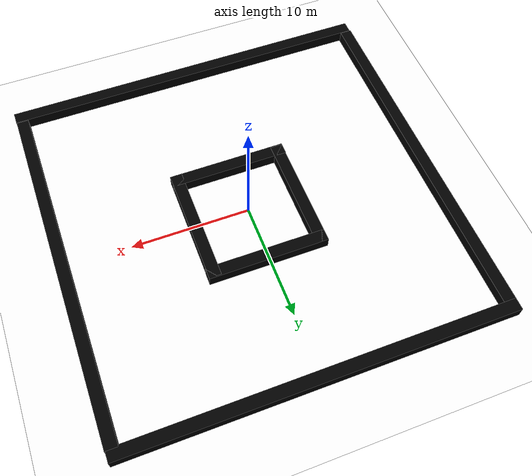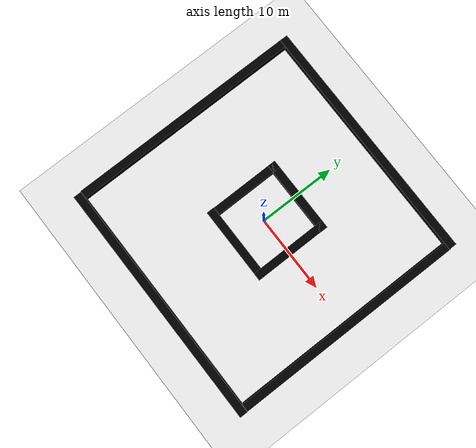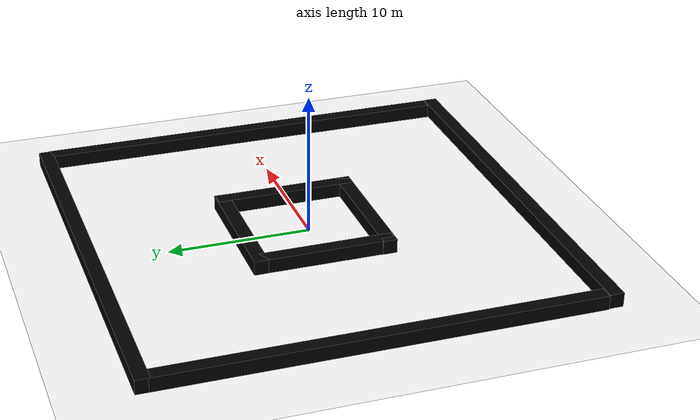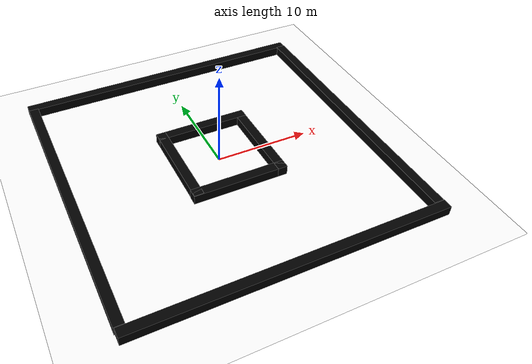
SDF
<?xml version="1.0"?>
<sdf version='1.7'>
  <world name='wro_world'>
    <physics name='1ms' type='ignored'>
      <max_step_size>0.001</max_step_size>
      <real_time_factor>1</real_time_factor>
      <real_time_update_rate>1000</real_time_update_rate>
    </physics>
    <plugin name='gz::sim::systems::Physics' filename='ignition-gazebo-physics-system'/>
    <plugin name='gz::sim::systems::UserCommands' filename='ignition-gazebo-user-commands-system'/>
    <plugin name='gz::sim::systems::SceneBroadcaster' filename='ignition-gazebo-scene-broadcaster-system'/>
    <plugin name='gz::sim::systems::Contact' filename='ignition-gazebo-contact-system'/>
    <gravity>0 0 -9.8</gravity>
    <magnetic_field>6e-06 2.3e-05 -4.2e-05</magnetic_field>
    <atmosphere type='adiabatic'/>
    <scene>
      <ambient>0.4 0.4 0.4 1</ambient>
      <background>0.7 0.7 0.7 1</background>
      <shadows>true</shadows>
    </scene>

    <model name='ground_plane'>
      <static>true</static>
      <link name='link'>
        <collision name='collision'>
          <geometry>
            <plane>
              <normal>0 0 1</normal>
              <size>32 32</size>
            </plane>
          </geometry>
          <surface>
            <friction>
              <ode/>
            </friction>
            <bounce/>
            <contact/>
          </surface>
        </collision>
        <visual name='visual'>
          <geometry>
            <plane>
              <normal>0 0 1</normal>
              <size>32 32</size>
            </plane>
          </geometry>
          <material>

            <ambient>1 1 1 1</ambient>
            <diffuse>1 1 1 1</diffuse>
            <specular>0.1 0.1 0.1 1</specular>
            <emissive>0 0 0 1</emissive>

            <pbr>
              <metal>
                <albedo_map>model://wro_ground/materials/textures/wro_mat.png</albedo_map>
              </metal>
            </pbr>

          </material>
        </visual>
        <pose>0 0 0 0 -0 0</pose>
        <inertial>
          <pose>0 0 0 0 -0 0</pose>
          <mass>1</mass>
          <inertia>
            <ixx>1</ixx>
            <ixy>0</ixy>
            <ixz>0</ixz>
            <iyy>1</iyy>
            <iyz>0</iyz>
            <izz>1</izz>
          </inertia>
        </inertial>
        <enable_wind>false</enable_wind>
      </link>
      <pose>0 0 0 0 -0 0</pose>
      <self_collide>false</self_collide>
    </model>
    <model name='box'>
      <pose>0.012711 15.4584 0.5 0 -0 0</pose>
      <link name='box_link'>
        <inertial>
          <inertia>
            <ixx>0.16666</ixx>
            <ixy>0</ixy>
            <ixz>0</ixz>
            <iyy>0.16666</iyy>
            <iyz>0</iyz>
            <izz>0.16666</izz>
          </inertia>
          <mass>1</mass>
          <pose>0 0 0 0 -0 0</pose>
        </inertial>
        <collision name='box_collision'>
          <geometry>
            <box>
              <size>32 1 1</size>
            </box>
          </geometry>
          <surface>
            <friction>
              <ode/>
            </friction>
            <bounce/>
            <contact/>
          </surface>
        </collision>
        <visual name='box_visual'>
          <geometry>
            <box>
              <size>32 1 1</size>
            </box>
          </geometry>
          <material>
            <ambient>0.1 0.1 0.1 1</ambient>
            <diffuse>0 0 0 1</diffuse>
            <specular>0.5 0.5 0.5 1</specular>
          </material>
        </visual>
        <pose>0 0 0 0 -0 0</pose>
        <enable_wind>false</enable_wind>
      </link>
      <static>false</static>
      <self_collide>false</self_collide>
    </model>
    <model name='box_1'>
      <pose>0.093739 -15.4594 0.5 0 -0 0</pose>
      <link name='box_link'>
        <inertial>
          <inertia>
            <ixx>0.16666</ixx>
            <ixy>0</ixy>
            <ixz>0</ixz>
            <iyy>0.16666</iyy>
            <iyz>0</iyz>
            <izz>0.16666</izz>
          </inertia>
          <mass>1</mass>
          <pose>0 0 0 0 -0 0</pose>
        </inertial>
        <collision name='box_collision'>
          <geometry>
            <box>
              <size>32 1 1</size>
            </box>
          </geometry>
          <surface>
            <friction>
              <ode/>
            </friction>
            <bounce/>
            <contact/>
          </surface>
        </collision>
        <visual name='box_visual'>
          <geometry>
            <box>
              <size>32 1 1</size>
            </box>
          </geometry>
          <material>
            <ambient>0.1 0.1 0.1 1</ambient>
            <diffuse>0 0 0 1</diffuse>
            <specular>0.5 0.5 0.5 1</specular>
          </material>
        </visual>
        <pose>0 0 0 0 -0 0</pose>
        <enable_wind>false</enable_wind>
      </link>
      <static>false</static>
      <self_collide>false</self_collide>
    </model>
    <model name='box_0'>
      <pose>-15.491 0.084693 0.5 0 -0 0</pose>
      <link name='box_link'>
        <inertial>
          <inertia>
            <ixx>0.16666</ixx>
            <ixy>0</ixy>
            <ixz>0</ixz>
            <iyy>0.16666</iyy>
            <iyz>0</iyz>
            <izz>0.16666</izz>
          </inertia>
          <mass>1</mass>
          <pose>0 0 0 0 -0 0</pose>
        </inertial>
        <collision name='box_collision'>
          <geometry>
            <box>
              <size>1 30 1</size>
            </box>
          </geometry>
          <surface>
            <friction>
              <ode/>
            </friction>
            <bounce/>
            <contact/>
          </surface>
        </collision>
        <visual name='box_visual'>
          <geometry>
            <box>
              <size>1 30 1</size>
            </box>
          </geometry>
          <material>
            <ambient>0.1 0.1 0.1 1</ambient>
            <diffuse>0 0 0 1</diffuse>
            <specular>0.5 0.5 0.5 1</specular>
          </material>
        </visual>
        <pose>0 0 0 0 -0 0</pose>
        <enable_wind>false</enable_wind>
      </link>
      <static>false</static>
      <self_collide>false</self_collide>
    </model>
    <model name='box_0_1'>
      <pose>15.5658 0.102971 0.5 0 -0 0</pose>
      <link name='box_link'>
        <inertial>
          <inertia>
            <ixx>0.16666</ixx>
            <ixy>0</ixy>
            <ixz>0</ixz>
            <iyy>0.16666</iyy>
            <iyz>0</iyz>
            <izz>0.16666</izz>
          </inertia>
          <mass>1</mass>
          <pose>0 0 0 0 -0 0</pose>
        </inertial>
        <collision name='box_collision'>
          <geometry>
            <box>
              <size>1 30 1</size>
            </box>
          </geometry>
          <surface>
            <friction>
              <ode/>
            </friction>
            <bounce/>
            <contact/>
          </surface>
        </collision>
        <visual name='box_visual'>
          <geometry>
            <box>
              <size>1 30 1</size>
            </box>
          </geometry>
          <material>
            <ambient>0.1 0.1 0.1 1</ambient>
            <diffuse>0 0 0 1</diffuse>
            <specular>0.5 0.5 0.5 1</specular>
          </material>
        </visual>
        <pose>0 0 0 0 -0 0</pose>
        <enable_wind>false</enable_wind>
      </link>
      <static>false</static>
      <self_collide>false</self_collide>
    </model>
    <model name='box_2'>
      <pose>0.202056 4.84378 0.5 0 -0 0</pose>
      <link name='box_link'>
        <inertial>
          <inertia>
            <ixx>0.16666</ixx>
            <ixy>0</ixy>
            <ixz>0</ixz>
            <iyy>0.16666</iyy>
            <iyz>0</iyz>
            <izz>0.16666</izz>
          </inertia>
          <mass>1</mass>
          <pose>0 0 0 0 -0 0</pose>
        </inertial>
        <collision name='box_collision'>
          <geometry>
            <box>
              <size>10 1 1</size>
            </box>
          </geometry>
          <surface>
            <friction>
              <ode/>
            </friction>
            <bounce/>
            <contact/>
          </surface>
        </collision>
        <visual name='box_visual'>
          <geometry>
            <box>
              <size>10 1 1</size>
            </box>
          </geometry>
          <material>
            <ambient>0.1 0.1 0.1 1</ambient>
            <diffuse>0 0 0 1</diffuse>
            <specular>0.5 0.5 0.5 1</specular>
          </material>
        </visual>
        <pose>0 0 0 0 -0 0</pose>
        <enable_wind>false</enable_wind>
      </link>
      <static>false</static>
      <self_collide>false</self_collide>
    </model>
    <model name='box_2_1'>
      <pose>0.198067 -4.23137 0.5 0 -0 0</pose>
      <link name='box_link'>
        <inertial>
          <inertia>
            <ixx>0.16666</ixx>
            <ixy>0</ixy>
            <ixz>0</ixz>
            <iyy>0.16666</iyy>
            <iyz>0</iyz>
            <izz>0.16666</izz>
          </inertia>
          <mass>1</mass>
          <pose>0 0 0 0 -0 0</pose>
        </inertial>
        <collision name='box_collision'>
          <geometry>
            <box>
              <size>10 1 1</size>
            </box>
          </geometry>
          <surface>
            <friction>
              <ode/>
            </friction>
            <bounce/>
            <contact/>
          </surface>
        </collision>
        <visual name='box_visual'>
          <geometry>
            <box>
              <size>10 1 1</size>
            </box>
          </geometry>
          <material>
            <ambient>0.1 0.1 0.1 1</ambient>
            <diffuse>0 0 0 1</diffuse>
            <specular>0.5 0.5 0.5 1</specular>
          </material>
        </visual>
        <pose>0 0 0 0 -0 0</pose>
        <enable_wind>false</enable_wind>
      </link>
      <static>false</static>
      <self_collide>false</self_collide>
    </model>
    <model name='box_2_1_1'>
      <pose>-4.28013 0.340148 0.5 0 0 -1.56866</pose>
      <link name='box_link'>
        <inertial>
          <inertia>
            <ixx>0.16666</ixx>
            <ixy>0</ixy>
            <ixz>0</ixz>
            <iyy>0.16666</iyy>
            <iyz>0</iyz>
            <izz>0.16666</izz>
          </inertia>
          <mass>1</mass>
          <pose>0 0 0 0 -0 0</pose>
        </inertial>
        <collision name='box_collision'>
          <geometry>
            <box>
              <size>10 1 1</size>
            </box>
          </geometry>
          <surface>
            <friction>
              <ode/>
            </friction>
            <bounce/>
            <contact/>
          </surface>
        </collision>
        <visual name='box_visual'>
          <geometry>
            <box>
              <size>10 1 1</size>
            </box>
          </geometry>
          <material>
            <ambient>0.1 0.1 0.1 1</ambient>
            <diffuse>0 0 0 1</diffuse>
            <specular>0.5 0.5 0.5 1</specular>
          </material>
        </visual>
        <pose>0 0 0 0 -0 0</pose>
        <enable_wind>false</enable_wind>
      </link>
      <static>false</static>
      <self_collide>false</self_collide>
    </model>
    <model name='box_2_1_1_1'>
      <pose>4.68913 0.261114 0.5 0 0 -1.56866</pose>
      <link name='box_link'>
        <inertial>
          <inertia>
            <ixx>0.16666</ixx>
            <ixy>0</ixy>
            <ixz>0</ixz>
            <iyy>0.16666</iyy>
            <iyz>0</iyz>
            <izz>0.16666</izz>
          </inertia>
          <mass>1</mass>
          <pose>0 0 0 0 -0 0</pose>
        </inertial>
        <collision name='box_collision'>
          <geometry>
            <box>
              <size>10 1 1</size>
            </box>
          </geometry>
          <surface>
            <friction>
              <ode/>
            </friction>
            <bounce/>
            <contact/>
          </surface>
        </collision>
        <visual name='box_visual'>
          <geometry>
            <box>
              <size>10 1 1</size>
            </box>
          </geometry>
          <material>
            <ambient>0.1 0.1 0.1 1</ambient>
            <diffuse>0 0 0 1</diffuse>
            <specular>0.5 0.5 0.5 1</specular>
          </material>
        </visual>
        <pose>0 0 0 0 -0 0</pose>
        <enable_wind>false</enable_wind>
      </link>
      <static>false</static>
      <self_collide>false</self_collide>
    </model>

    <light name='sun' type='directional'>
      <pose>0 0 10 0 -0 0</pose>
      <cast_shadows>true</cast_shadows>
      <intensity>8</intensity>
      <direction>-0.5 0.1 -0.9</direction>
      <diffuse>0.8 0.8 0.8 1</diffuse>
      <specular>0.2 0.2 0.2 1</specular>
      <attenuation>
        <range>1000</range>
        <linear>0.01</linear>
        <constant>0.90000000000000002</constant>
        <quadratic>0.001</quadratic>
      </attenuation>
      <spot>
        <inner_angle>0</inner_angle>
        <outer_angle>0</outer_angle>
        <falloff>0</falloff>
      </spot>
    </light>
  </world>
</sdf>
